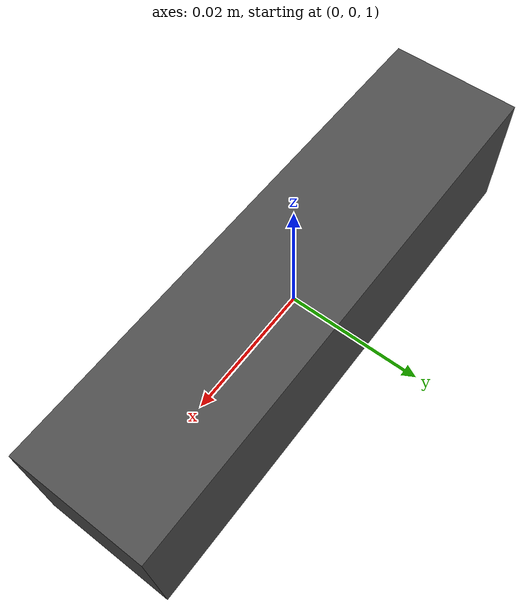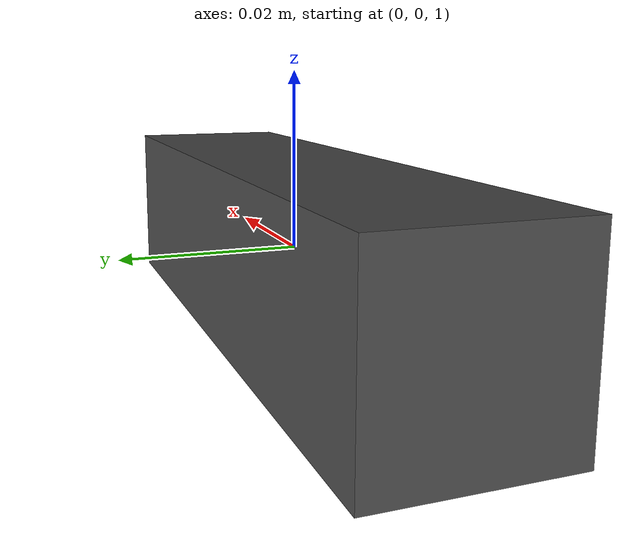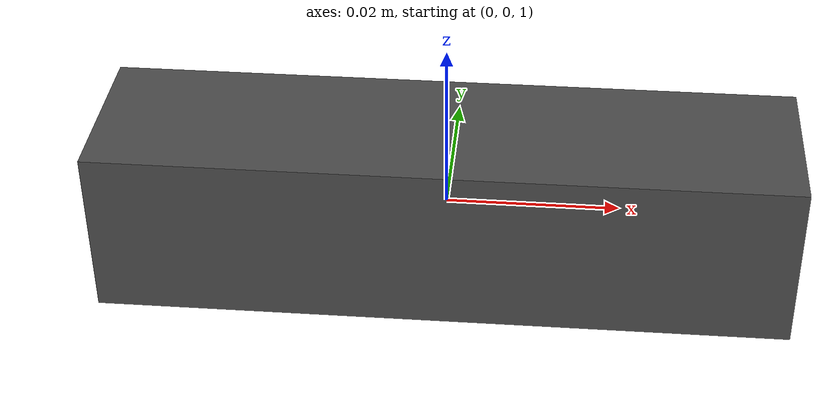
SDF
<?xml version="1.0"?>
<sdf version="1.6">
  <model name="oak_rgb_camera">
    <static>true</static>
    <link name="oak_rgb_optical_frame">
      <pose>0 0 1 0 0 0</pose>
      <inertial>
        <mass>0.1</mass>
        <inertia>
          <ixx>1e-6</ixx>
          <iyy>1e-6</iyy>
          <izz>1e-6</izz>
          <ixy>0</ixy>
          <ixz>0</ixz>
          <iyz>0</iyz>
        </inertia>
      </inertial>
      <visual name="camera_visual">
        <geometry>
          <box>
            <size>0.08 0.02 0.02</size>
          </box>
        </geometry>
        <material>
          <ambient>0.2 0.2 0.2 1</ambient>
          <diffuse>0.3 0.3 0.3 1</diffuse>
        </material>
      </visual>

      <sensor name="oak_rgb_camera" type="camera">
        <pose>0 0 0 0 0 0</pose>
        <update_rate>30</update_rate>
        <camera>
          <horizontal_fov>1.396</horizontal_fov>
          <image>
            <width>640</width>
            <height>480</height>
            <format>R8G8B8</format>
          </image>
          <clip>
            <near>0.05</near>
            <far>50.0</far>
          </clip>
        </camera>
        <always_on>true</always_on>
        <visualize>true</visualize>
        <plugin name="gazebo_ros_camera" filename="libgazebo_ros_camera.so">
          <ros>
            <namespace>/camera</namespace>
          </ros>
          <frame_name>oak_rgb_optical_frame</frame_name>
          <camera_name>oak_rgb</camera_name>
          <image_topic_name>image_raw</image_topic_name>
          <camera_info_topic_name>camera_info</camera_info_topic_name>
        </plugin>
      </sensor>
    </link>
  </model>
</sdf>
